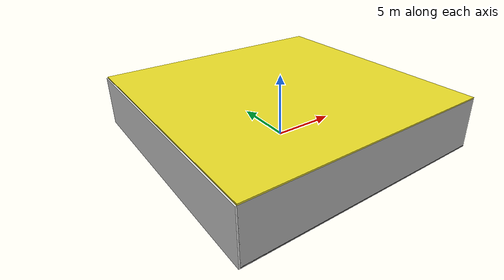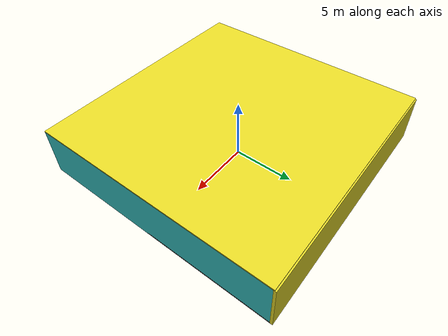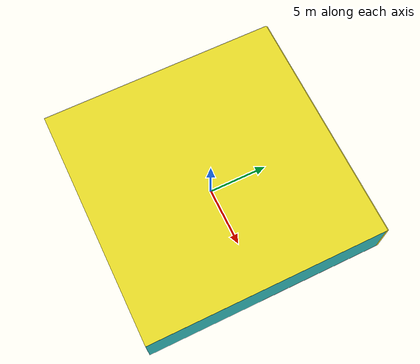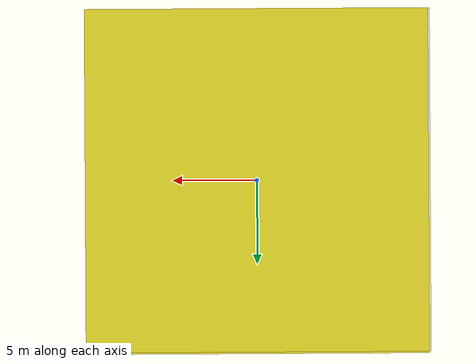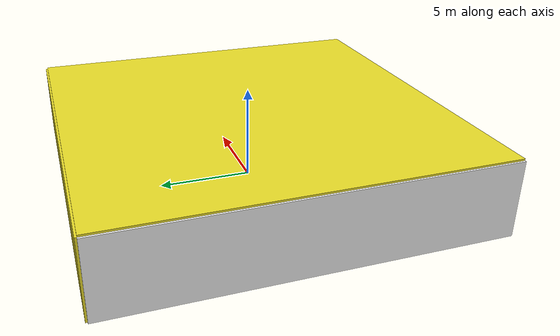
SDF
<sdf version="1.4">
 <world name="default">
  <physics type="ode">
   <max_step_size>0.001</max_step_size>
   <real_time_factor>1</real_time_factor>
   <real_time_update_rate>1000</real_time_update_rate>
   <gravity>0 0 -9.8</gravity>
  </physics>
  <scene><ambient>0.4 0.4 0.4 1</ambient><background>0.7 0.7 0.7 1</background><shadows>1</shadows></scene>
  <model name="Surrounding">
   <static>1</static>
   <link name="Ceiling">
    <collision name="Ceiling_Collision"><geometry><box><size>20 20 0.1</size></box></geometry></collision>
    <visual name="Ceiling_Visual">
     <geometry><box><size>20 20 0.1</size></box></geometry>
     <material>
      <script><uri>file://media/materials/scripts/gazebo.material</uri><name>Gazebo/Yellow</name></script>
     </material>
    </visual>
    <pose>0 0 4.05 0 0 0</pose>
   </link>
   <link name="Wall_South">
    <collision name="Wall_South_Collision">
     <geometry><box><size>20 0 4</size></box></geometry>
     <pose>0 0 2 0 -0 0</pose>
    </collision>
    <visual name="Wall_South_Visual">
     <pose>0 0 2 0 -0 0</pose>
     <geometry><box><size>20 0 4</size></box></geometry>
     <material>
      <script><uri>file://media/materials/scripts/gazebo.material</uri><name>Gazebo/LightOff</name></script>
     </material>
    </visual>
    <velocity_decay><linear>0</linear><angular>0</angular></velocity_decay>
    <pose>0 -10 0 0 -0 0</pose>
   </link>
   <link name="Wall_East">
    <collision name="Wall_21_Collision">
     <geometry><box><size>20 0 4</size></box></geometry>
     <pose>0 0 2 0 -0 0</pose>
    </collision>
    <visual name="Wall_21_Visual">
     <pose>0 0 2 0 -0 0</pose>
     <geometry><box><size>20 0 4</size></box></geometry>
     <material>
      <script>
       <uri>file://media/materials/scripts/gazebo.material</uri>
       <name>Gazebo/TurquoiseGlowOutline</name>
      </script>
     </material>
    </visual>
    <velocity_decay><linear>0</linear><angular>0</angular></velocity_decay>
    <pose>10 0 0 0 -0 1.5708</pose>
   </link>
   <link name="Wall_North">
    <collision name="Wall_22_Collision">
     <geometry><box><size>20 0.2 4</size></box></geometry>
     <pose>0 0 2 0 -0 0</pose>
    </collision>
    <visual name="Wall_22_Visual">
     <pose>0 0 2 0 -0 0</pose>
     <geometry><box><size>20 0.2 4</size></box></geometry>
     <material>
      <script><uri>file://media/materials/scripts/gazebo.material</uri><name>Gazebo/YellowGlow</name></script>
     </material>
    </visual>
    <velocity_decay><linear>0</linear><angular>0</angular></velocity_decay>
    <pose>0 10 0 0 -0 0</pose>
   </link>
   <link name="Wall_West">
    <collision name="Wall_23_Collision">
     <geometry><box><size>20 0.2 4</size></box></geometry>
     <pose>0 0 2 0 -0 0</pose>
    </collision>
    <visual name="Wall_23_Visual">
     <pose>0 0 2 0 -0 0</pose>
     <geometry><box><size>20 0.2 4</size></box></geometry>
     <material>
      <script><uri>file://media/materials/scripts/gazebo.material</uri><name>Gazebo/WhiteGlow</name></script>
     </material>
    </visual>
    <velocity_decay><linear>0</linear><angular>0</angular></velocity_decay>
    <pose>-10 0 0 0 0 -1.5708</pose>
   </link>
   <link name="Ground_link">
    <collision name="collision">
     <pose>0 0 .05 0 -0 0</pose>
     <geometry><box><size>20 20 0.1</size></box></geometry>
    </collision>
    <visual name="visual">
     <pose>0 0 .05 0 -0 0</pose>
     <geometry><box><size>20 20 0.1</size></box></geometry>
     <material>
      <script><uri>file://media/materials/scripts/gazebo.material</uri><name>Gazebo/Road</name></script>
     </material>
    </visual>
   </link>
   <static>1</static>
  </model>
  <spherical_coordinates>
   <surface_model>EARTH_WGS84</surface_model>
   <latitude_deg>0</latitude_deg>
   <longitude_deg>0</longitude_deg>
   <elevation>0</elevation>
   <heading_deg>0</heading_deg>
  </spherical_coordinates>
  <light name="lightball_0" type="diffuse">
   <diffuse>0.8 0.8 0.8 1</diffuse>
   <specular>0.2 0.2 0.2 1</specular>
   <attenuation>
    <range>100</range>
    <constant>0.7</constant>
    <linear>0.01</linear>
    <quadratic>0.001</quadratic>
   </attenuation>
   <direction>-0.5 0.1 -0.9</direction>
   <pose>7.92181398909 4.43222184807 2.75483843808 0 0 0</pose>
  </light>
  <light name="lightball_1" type="diffuse">
   <diffuse>0.8 0.8 0.8 1</diffuse>
   <specular>0.2 0.2 0.2 1</specular>
   <attenuation>
    <range>100</range>
    <constant>0.7</constant>
    <linear>0.01</linear>
    <quadratic>0.001</quadratic>
   </attenuation>
   <direction>-0.5 0.1 -0.9</direction>
   <pose>1.30253840285 7.50744321051 1.54693395462 0 0 0</pose>
  </light>
  <light name="lightball_2" type="diffuse">
   <diffuse>0.8 0.8 0.8 1</diffuse>
   <specular>0.2 0.2 0.2 1</specular>
   <attenuation>
    <range>100</range>
    <constant>0.7</constant>
    <linear>0.01</linear>
    <quadratic>0.001</quadratic>
   </attenuation>
   <direction>-0.5 0.1 -0.9</direction>
   <pose>-3.33249494702 -1.39384994784 0.790642933815 0 0 0</pose>
  </light>
  <light name="lightball_3" type="diffuse">
   <diffuse>0.8 0.8 0.8 1</diffuse>
   <specular>0.2 0.2 0.2 1</specular>
   <attenuation>
    <range>100</range>
    <constant>0.7</constant>
    <linear>0.01</linear>
    <quadratic>0.001</quadratic>
   </attenuation>
   <direction>-0.5 0.1 -0.9</direction>
   <pose>0.953864360447 6.37062196514 1.17050810841 0 0 0</pose>
  </light>
  <light name="lightball_4" type="diffuse">
   <diffuse>0.8 0.8 0.8 1</diffuse>
   <specular>0.2 0.2 0.2 1</specular>
   <attenuation>
    <range>100</range>
    <constant>0.7</constant>
    <linear>0.01</linear>
    <quadratic>0.001</quadratic>
   </attenuation>
   <direction>-0.5 0.1 -0.9</direction>
   <pose>2.70485779579 2.59056224643 3.61622378485 0 0 0</pose>
  </light>
  <light name="lightball_5" type="diffuse">
   <diffuse>0.8 0.8 0.8 1</diffuse>
   <specular>0.2 0.2 0.2 1</specular>
   <attenuation>
    <range>100</range>
    <constant>0.7</constant>
    <linear>0.01</linear>
    <quadratic>0.001</quadratic>
   </attenuation>
   <direction>-0.5 0.1 -0.9</direction>
   <pose>-9.10092797824 -6.22047302578 2.45068274018 0 0 0</pose>
  </light>
  <light name="lightball_6" type="diffuse">
   <diffuse>0.8 0.8 0.8 1</diffuse>
   <specular>0.2 0.2 0.2 1</specular>
   <attenuation>
    <range>100</range>
    <constant>0.7</constant>
    <linear>0.01</linear>
    <quadratic>0.001</quadratic>
   </attenuation>
   <direction>-0.5 0.1 -0.9</direction>
   <pose>-0.509428798441 -6.6607928117 3.02343641132 0 0 0</pose>
  </light>
  <light name="lightball_7" type="diffuse">
   <diffuse>0.8 0.8 0.8 1</diffuse>
   <specular>0.2 0.2 0.2 1</specular>
   <attenuation>
    <range>100</range>
    <constant>0.7</constant>
    <linear>0.01</linear>
    <quadratic>0.001</quadratic>
   </attenuation>
   <direction>-0.5 0.1 -0.9</direction>
   <pose>-0.61403158309 4.24576791744 1.59198329995 0 0 0</pose>
  </light>
  <light name="lightball_8" type="diffuse">
   <diffuse>0.8 0.8 0.8 1</diffuse>
   <specular>0.2 0.2 0.2 1</specular>
   <attenuation>
    <range>100</range>
    <constant>0.7</constant>
    <linear>0.01</linear>
    <quadratic>0.001</quadratic>
   </attenuation>
   <direction>-0.5 0.1 -0.9</direction>
   <pose>2.64535469976 5.93520952492 1.43271359064 0 0 0</pose>
  </light>
  <light name="lightball_9" type="diffuse">
   <diffuse>0.8 0.8 0.8 1</diffuse>
   <specular>0.2 0.2 0.2 1</specular>
   <attenuation>
    <range>100</range>
    <constant>0.7</constant>
    <linear>0.01</linear>
    <quadratic>0.001</quadratic>
   </attenuation>
   <direction>-0.5 0.1 -0.9</direction>
   <pose>-9.88650390969 1.04149278234 3.58066792479 0 0 0</pose>
  </light>
  <light name="lightball_10" type="diffuse">
   <diffuse>0.8 0.8 0.8 1</diffuse>
   <specular>0.2 0.2 0.2 1</specular>
   <attenuation>
    <range>100</range>
    <constant>0.7</constant>
    <linear>0.01</linear>
    <quadratic>0.001</quadratic>
   </attenuation>
   <direction>-0.5 0.1 -0.9</direction>
   <pose>7.64612116751 0.721616781177 3.3236076139 0 0 0</pose>
  </light>
  <light name="lightball_11" type="diffuse">
   <diffuse>0.8 0.8 0.8 1</diffuse>
   <specular>0.2 0.2 0.2 1</specular>
   <attenuation>
    <range>100</range>
    <constant>0.7</constant>
    <linear>0.01</linear>
    <quadratic>0.001</quadratic>
   </attenuation>
   <direction>-0.5 0.1 -0.9</direction>
   <pose>6.05408727355 8.03920184099 3.32738747741 0 0 0</pose>
  </light>
  <light name="lightball_12" type="diffuse">
   <diffuse>0.8 0.8 0.8 1</diffuse>
   <specular>0.2 0.2 0.2 1</specular>
   <attenuation>
    <range>100</range>
    <constant>0.7</constant>
    <linear>0.01</linear>
    <quadratic>0.001</quadratic>
   </attenuation>
   <direction>-0.5 0.1 -0.9</direction>
   <pose>5.25841057522 6.87542980605 0.952094198945 0 0 0</pose>
  </light>
  <light name="lightball_13" type="diffuse">
   <diffuse>0.8 0.8 0.8 1</diffuse>
   <specular>0.2 0.2 0.2 1</specular>
   <attenuation>
    <range>100</range>
    <constant>0.7</constant>
    <linear>0.01</linear>
    <quadratic>0.001</quadratic>
   </attenuation>
   <direction>-0.5 0.1 -0.9</direction>
   <pose>3.35721948609 -5.65531037022 3.15650917794 0 0 0</pose>
  </light>
  <include>
   <uri>model://textured_shapes</uri>
   <pose>1.94252044419 -6.73679001188 0 0 0 0.488951943773</pose>
  </include>
  <include><uri>model://table</uri><pose>4.28635926686 -1.61811709392 0 0 0 3.06729688498</pose></include>
 </world>
</sdf>

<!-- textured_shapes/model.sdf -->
<sdf version="1.6">
  <model name="textured_shapes">
    <pose>0 0 0.5 0 0 0</pose>
    <link name="box">
      <pose>0 -1.5 0 0 0 0</pose>
      <collision name="collision">
        <geometry>
          <box>
            <size>1 1 1</size>
          </box>
        </geometry>
      </collision>
      <visual name="visual">
        <geometry>
          <box>
            <size>1 1 1</size>
          </box>
        </geometry>
        <material>
          <script>
            <uri>model://../model_source/models/textured_shapes/materials/scripts</uri>
            <uri>model://../model_source/models/textured_shapes/materials/textures</uri>
            <name>TexturedShape/Squares</name>
          </script>
        </material>
      </visual>
    </link>
    <link name="sphere">
      <collision name="collision">
        <geometry>
          <sphere>
            <radius>0.5</radius>
          </sphere>
        </geometry>
      </collision>
      <visual name="visual">
        <geometry>
          <sphere>
            <radius>0.5</radius>
          </sphere>
        </geometry>
        <material>
          <script>
            <uri>model://../model_source/models/textured_shapes/materials/scripts</uri>
            <uri>model://../model_source/models/textured_shapes/materials/textures</uri>
            <name>TexturedShape/Squares</name>
          </script>
        </material>
      </visual>
    </link>
    <link name="cylinder">
      <pose>0 1.5 0 0 0 0</pose>
      <collision name="collision">
        <geometry>
          <cylinder>
            <radius>0.5</radius>
            <length>1</length>
          </cylinder>
        </geometry>
      </collision>
      <visual name="visual">
        <geometry>
          <cylinder>
            <radius>0.5</radius>
            <length>1</length>
          </cylinder>
        </geometry>
        <material>
          <script>
            <uri>model://../model_source/models/textured_shapes/materials/scripts</uri>
            <uri>model://../model_source/models/textured_shapes/materials/textures</uri>
            <name>TexturedShape/Squares</name>
          </script>
        </material>
      </visual>
    </link>
  </model>
</sdf>

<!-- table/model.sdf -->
<sdf version="1.5">
  <model name="table">
    <static>true</static>
    <link name="link">
      <collision name="surface">
        <pose>0 0 1.0 0 0 0</pose>
        <geometry>
          <box>
            <size>1.5 0.8 0.03</size>
          </box>
        </geometry>
        <surface>
          <friction>
            <ode>
              <mu>0.6</mu>
              <mu2>0.6</mu2>
            </ode>
          </friction>
        </surface>
      </collision>
      <visual name="visual1">
        <pose>0 0 1.0 0 0 0</pose>
        <geometry>
          <box>
            <size>1.5 0.8 0.03</size>
          </box>
        </geometry>
        <material>
          <script>
            <uri>model://media/materials/scripts/gazebo.material</uri>
            <name>Gazebo/Wood</name>
          </script>
        </material>
      </visual>
      <collision name="front_left_leg">
        <pose>0.68 0.38 0.5 0 0 0</pose>
        <geometry>
          <cylinder>
            <radius>0.02</radius>
            <length>1.0</length>
          </cylinder>
        </geometry>
      </collision>
      <visual name="front_left_leg">
        <pose>0.68 0.38 0.5 0 0 0</pose>
        <geometry>
          <cylinder>
            <radius>0.02</radius>
            <length>1.0</length>
          </cylinder>
        </geometry>
        <material>
          <script>
            <uri>model://media/materials/scripts/gazebo.material</uri>
            <name>Gazebo/Grey</name>
          </script>
        </material>
      </visual>
      <collision name="front_right_leg">
        <pose>0.68 -0.38 0.5 0 0 0</pose>
        <geometry>
          <cylinder>
            <radius>0.02</radius>
            <length>1.0</length>
          </cylinder>
        </geometry>
      </collision>
      <visual name="front_right_leg">
        <pose>0.68 -0.38 0.5 0 0 0</pose>
        <geometry>
          <cylinder>
            <radius>0.02</radius>
            <length>1.0</length>
          </cylinder>
        </geometry>
        <material>
          <script>
            <uri>model://media/materials/scripts/gazebo.material</uri>
            <name>Gazebo/Grey</name>
          </script>
        </material>
      </visual>
      <collision name="back_right_leg">
        <pose>-0.68 -0.38 0.5 0 0 0</pose>
        <geometry>
          <cylinder>
            <radius>0.02</radius>
            <length>1.0</length>
          </cylinder>
        </geometry>
      </collision>
      <visual name="back_right_leg">
        <pose>-0.68 -0.38 0.5 0 0 0</pose>
        <geometry>
          <cylinder>
            <radius>0.02</radius>
            <length>1.0</length>
          </cylinder>
        </geometry>
        <material>
          <script>
            <uri>model://media/materials/scripts/gazebo.material</uri>
            <name>Gazebo/Grey</name>
          </script>
        </material>
      </visual>
      <collision name="back_left_leg">
        <pose>-0.68 0.38 0.5 0 0 0</pose>
        <geometry>
          <cylinder>
            <radius>0.02</radius>
            <length>1.0</length>
          </cylinder>
        </geometry>
      </collision>
      <visual name="back_left_leg">
        <pose>-0.68 0.38 0.5 0 0 0</pose>
        <geometry>
          <cylinder>
            <radius>0.02</radius>
            <length>1.0</length>
          </cylinder>
        </geometry>
        <material>
          <script>
            <uri>model://media/materials/scripts/gazebo.material</uri>
            <name>Gazebo/Grey</name>
          </script>
        </material>
      </visual>
    </link>
  </model>
</sdf>
